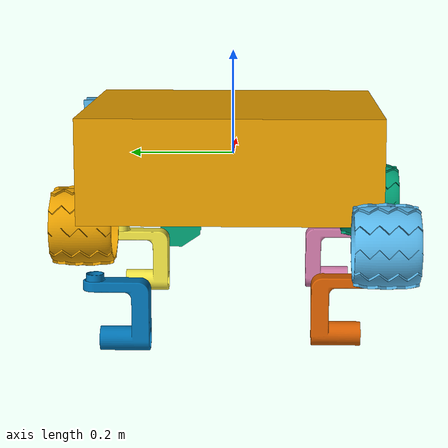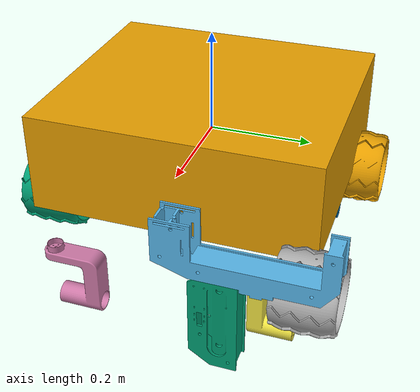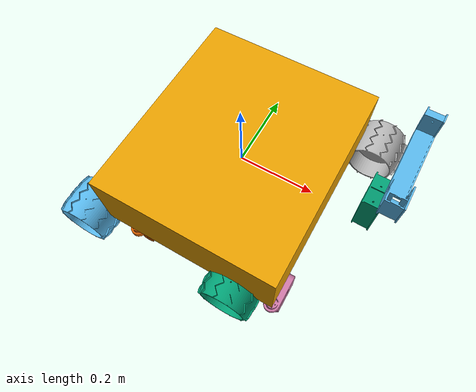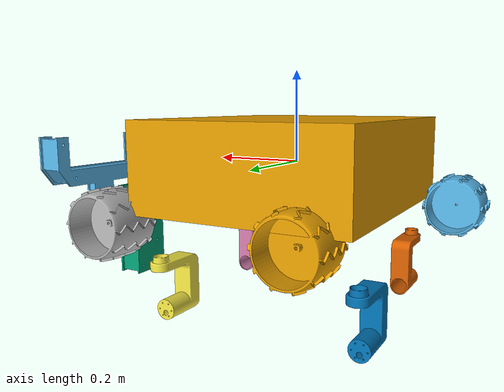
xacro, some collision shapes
<?xml version="1.0"?>
<robot xmlns:xacro="http://www.ros.org/wiki/xacro" name="mani">

	<!-- TODO: set to correct mass values
		   set to correct inertia values
		   joint speed chassis_to_steeringangles
		   adjust coordinate system in CAD files
		   add camera head -->

	<xacro:property name="PI" value="3.141592654"/>
	<xacro:property name="to_scale" value="0.001"/>

	<!-- Links -->

	<link name="chassis">
		<xacro:property name="ch_x" value="0.484"/>
		<xacro:property name="ch_y" value="0.55374428"/>
		<xacro:property name="ch_z" value="0.19384846"/>
		<xacro:property name="ch_mass" value="2.0"/>

		<visual name="visual">
<origin xyz="${ch_x/2} ${ch_y/2} ${-ch_z/2}" rpy="0 0 ${PI}"/>
			<geometry>
				<mesh filename="file://$(find mani)/mani_description/meshes/MANI-chassis.STL" scale="${to_scale} ${to_scale} ${to_scale}"/>
			</geometry>
		</visual>

		<!-- simplify as a box for quicker processing -->
		<collision name="collision">
			<origin xyz="0 0 0" rpy="0 0 0"/>
			<geometry>
				<box size="${ch_x} ${ch_y} ${ch_z}"/>
			</geometry>
		</collision>

		<inertial>
			<!-- origin = center of mass -->
			<mass value="${ch_mass}"/>
			<inertia ixx="1"
				 ixy="0"
				 ixz="0"
				 iyy="1"
				 iyz="0"
				 izz="1"/>
		</inertial>
	</link>

	<link name="camera_neck">
		<xacro:property name="camn_x" value="0.053"/>
		<xacro:property name="camn_y" value="0.305"/>
		<xacro:property name="camn_z" value="0.122"/>
		<xacro:property name="camn_mass" value="0.19076"/>

		<visual name="visual">
			<origin xyz="${ch_x/2-camn_x-0.016} ${ch_y/2-0.0675} ${-ch_z-0.025}" rpy="0 0 ${PI}"/>
			<geometry>
				<mesh filename="file://$(find mani)/mani_description/meshes/MANI-cameraneck.STL" scale="${to_scale} ${to_scale} ${to_scale}"/>
			</geometry>
		</visual>

		<collision name="collision">
			<origin xyz="0 0 0"/>
                        <geometry>
                                <box size="${camn_x} ${camn_y} ${camn_z}"/>
                        </geometry>
		</collision>

		<inertial>
			<origin xyz="0 0 0" rpy="${PI/2} 0 ${PI/2}"/>
			<mass value="${camn_mass}"/>
			<inertia ixx="0.01"
                                 ixy="0"
                                 ixz="0"
                                 iyy="0.01"
                                 iyz="0"
                                 izz="0.01"/>
		</inertial>
	</link>

	<link name="camera_head">
		<xacro:property name="camh_x" value="0.053"/>
		<xacro:property name="camh_y" value="0.203"/>
		<xacro:property name="camh_z" value="0.088"/>
		<xacro:property name="camh_mass" value="0.76741"/>

		<visual name="visual">
			<origin xyz="${ch_x/2-camh_x-camn_x-0.005+0.001} ${ch_y/2-camh_y/2+camh_y/4-camh_y/2+0.011} ${-ch_z-camh_z/2-0.018}" rpy="0 0 ${PI}"/>
			<geometry>
				<mesh filename="file://$(find mani)/mani_description/meshes/MANI-camerahead.STL" scale="${to_scale} ${to_scale} ${to_scale}"/>
			</geometry>
		</visual>

		<collision name="collision">
			<origin xyz="0 0 ${camh_z/3}" rpy="0 0 0"/>
			<geometry>
				<box size="${camh_x} ${camh_y} ${camh_z}"/>
			</geometry>
		</collision>

		<inertial>
			<origin xyz="0 0 0" rpy="${PI/2} 0 ${PI/2}"/>
			<mass value="${camh_mass}"/>
			<inertia ixx="0.01"
                                 ixy="0"
                                 ixz="0"
                                 iyy="0.01"
                                 iyz="0"
                                 izz="0.01"/>
		</inertial>
	</link>

	<!-- steering angles -->
	<xacro:property name="sa_x" value="0.044"/>
        <xacro:property name="sa_y" value="0.121"/>
        <xacro:property name="sa_z" value="0.130"/>
        <xacro:property name="sa_mass" value="0.818"/>
	<xacro:macro name="steering_angle" params="name *visual_origin *collision_origin *inertial_origin">
		<link name="steering_angle_${name}">
                	<visual name="visual">
                    		<xacro:insert_block name="visual_origin"/>
                        	<geometry>
                                	<mesh filename="file://$(find mani)/mani_description/meshes/MANI-steeringangle.STL" scale="${to_scale} ${to_scale} ${to_scale}"/>
                        	</geometry>
                	</visual>

                	<!-- not possible to simplify with a simple shape, so use original mesh -->
                	<collision name="collision">
                        	<xacro:insert_block name="collision_origin"/>
                        	<geometry>
                        		<box size="${sa_x} ${sa_y} ${sa_z}"/>
</geometry>
                	</collision>

                	<inertial>
				<xacro:insert_block name="inertial_origin"/>
				<mass value="${sa_mass}"/>
				<inertia ixx="0.01"
                                 	 ixy="0"
                                	 ixz="0"
                                 	 iyy="0.01"
                                 	 iyz="0"
                                 	 izz="0.01"/>
                	</inertial>
        	</link>
	</xacro:macro>

	<steering_angle name="frontleft">
		<origin xyz="${-0.03122+0.08868404/4-0.0175} ${0.026} ${-0.00117-0.142/2+0.025}" rpy="0 0 ${-PI/2}"/>
		<origin xyz="0 ${-sa_y/4} 0"/>
		<origin xyz="0 0 0" rpy="${PI/2} ${PI/2} ${PI/2}"/>
	</steering_angle>

	<steering_angle name="rearleft">
		<origin xyz="${-0.03122+0.08868404/4-0.013} ${0.026} ${-0.00117-0.142/2+0.025}" rpy="0 0 ${-PI/2}"/>
		<origin xyz="0 ${-sa_y/4} 0"/>
		<origin xyz="0 0 0" rpy="${PI/2} 0 ${PI/2}"/>
	</steering_angle>

	<steering_angle name="rearright">
		<origin xyz="${+0.03122-0.08868404/4+0.01} ${-0.031} ${-0.00117-0.142/2+0.025}" rpy="0 0 ${PI/2}"/>

                <origin xyz="0 ${sa_y/4} 0"/>
                <origin xyz="0 0 0" rpy="${PI/2} 0 ${PI/2}"/>
        </steering_angle>

	<steering_angle name="frontright">
                <origin xyz="${+0.03122-0.08868404/4+0.0025} ${-0.031} ${-0.00117-0.142/2+0.025}" rpy="0 0 ${PI/2}"/>
                <origin xyz="0 ${sa_y/4} 0"/>
                <origin xyz="0 0 0" rpy="${PI/2} 0 ${PI/2}"/>
        </steering_angle>

	<!-- wheels -->
	<xacro:property name="wh_length" value="0.115"/>
        <xacro:property name="wh_radius" value="${0.130/2}"/>
        <xacro:property name="wh_mass" value="0.57134"/>
	<xacro:macro name="wheel" params="name *visual_origin *collision_origin *inertial_origin">
		<link name="wheel_${name}">
                	<visual name="visual">
				<xacro:insert_block name="visual_origin"/>
                        	<geometry>
                                	<mesh filename="file://$(find mani)/mani_description/meshes/MANI-wheel.STL" scale="${to_scale} ${to_scale} ${to_scale}"/>
                        	</geometry>
                	</visual>

                	<collision name="collision">
                        	<xacro:insert_block name="collision_origin"/>
                       		<geometry>
                                	<cylinder length="${wh_length}" radius="${wh_radius}"/>
                        	</geometry>
                	</collision>

                	<inertial>
				<xacro:insert_block name="inertial_origin"/>
                        	<mass value="${wh_mass}"/>
                        	<inertia ixx="0.01"
                                 	 ixy="0"
                                	 ixz="0"
                                	 iyy="0.01"
                                	 iyz="0"
                                	 izz="0.01"/>
                	</inertial>
        	</link>
	</xacro:macro>

	<wheel name="frontleft">
		<origin xyz="${wh_radius+0.0125} ${-wh_radius-0.0122+0.0015} ${wh_length/2}" rpy="0 ${PI} 0"/> <!-- visual-->
		<origin xyz="0 0 0"/>	<!-- collision -->
		<origin xyz="0 0 0"/>	<!-- inertial -->
	</wheel>

	<wheel name="rearleft">
	   	<origin xyz="${wh_radius+0.0125} ${-wh_radius-0.0122+0.0015} ${wh_length/2}" rpy="0 ${PI} 0"/>
                <origin xyz="0 0 0"/>
		<origin xyz="0 0 0"/>
        </wheel>

	<wheel name="rearright">
                <origin xyz="${-wh_radius-0.0125} ${-wh_radius-0.0122+0.0015} ${-wh_length/2}"/>
                <origin xyz="0 0 0"/>
		<origin xyz="0 0 0"/>
        </wheel>

	<wheel name="frontright">
                <origin xyz="${-wh_radius-0.0125} ${-wh_radius-0.0122+0.0015} ${-wh_length/2}"/>
		<origin xyz="0 0 0"/>
                <origin xyz="0 0 0"/>
        </wheel>

	<!-- Joints -->

	<!-- camera head 60-60 grad-->
	<joint name="cam_1_neck" type="revolute"> <!-- revolute -->
		<parent link="chassis"/>
		<child link="camera_neck"/>
		<limit effort="100.0" lower="-1.0472" upper="1.0472" velocity="10"/>
		<axis xyz="0 0 1"/>
		<origin xyz="${ch_x/2-camn_x/2} 0 ${ch_z/2+camn_z/2}" rpy="0 0 0"/>
	</joint>

	<joint name="cam_2_head" type="revolute">
		<parent link="camera_neck"/>
		<child link="camera_head"/>
		<limit effort="100.0" lower="-${PI/2}" upper="${PI/2}" velocity="10"/>
		<axis xyz="0 1 0"/>
		<origin xyz="0 0 ${camn_z*0.3}" rpy="0 0 0"/>
	</joint>

	<!-- steering angles -->
	<!-- f: front, b: back, l: left, r: right-->
	<xacro:property name="steering_max_vel" value="0.75"/>
	<xacro:macro name="steer" params="joint_name pos *origin">
		<joint name="${joint_name}" type="revolute">
			<parent link="chassis"/>
                	<child link="steering_angle_${pos}"/>
                	<limit effort="100.0" lower="-${PI/2}" upper="${PI/2}" velocity="${steering_max_vel}"/>
                	<axis xyz="0 0 1"/>
               		<xacro:insert_block name="origin"/>
		</joint>
	</xacro:macro>

	<steer joint_name="steer_1_fl" pos="frontleft">
                <origin xyz="${ch_x/2-sa_x/2} ${ch_y/2-sa_y/2} ${-ch_z/2-sa_z/2}"/>
        </steer>

	<steer joint_name="steer_2_rl" pos="rearleft">
                <origin xyz="${-ch_x/2+sa_x/2} ${ch_y/2-sa_y/2} ${-ch_z/2-sa_z/2}"/>
        </steer>

	<steer joint_name="steer_3_rr" pos="rearright">
                <origin xyz="${-ch_x/2+sa_x/2} ${-ch_y/2+sa_y/2} ${-ch_z/2-sa_z/2}"/>
        </steer>

	<steer joint_name="steer_4_fr" pos="frontright">
		<origin xyz="${ch_x/2-sa_x/2} ${-ch_y/2+sa_y/2} ${-ch_z/2-sa_z/2}"/>
	</steer>

	<!-- wheels -->
	<xacro:macro name="drive" params="joint_name pos *origin">
		<joint name="${joint_name}" type="continuous">
			<parent link="steering_angle_${pos}"/>
			<child link="wheel_${pos}"/>
			<axis xyz="0 0 1"/>
			<xacro:insert_block name="origin"/>
		</joint>
	</xacro:macro>

	<!-- 0.22 is an offset value based on the current design (inner radius) -->
	<drive joint_name="drive_1_fl" pos="frontleft">
		<origin xyz="${-0.005} ${0} ${-sa_z/2+0.022+0.0065+0.0122/2}" rpy="${-PI/2} 0 0"/>
	</drive>

	<drive joint_name="drive_2_rl" pos="rearleft">
                <origin xyz="${0} ${0} ${-sa_z/2+0.022+0.0065+0.0122/2}" rpy="${-PI/2} 0 0"/>
        </drive>

	<drive joint_name="drive_3_rr" pos="rearright">
                <origin xyz="${-0.005} ${0} ${-sa_z/2+0.022+0.0065+0.0112/2}" rpy="${-PI/2} 0 0"/>
        </drive>

	<drive joint_name="drive_4_fr" pos="frontright">
                <origin xyz="${-0.01} ${0} ${-sa_z/2+0.022+0.0065+0.0112/2}" rpy="${-PI/2} 0 0"/>
        </drive>

	<!-- transmission -->
        <!-- move camera neck/head -->
	<transmission name="transm_cam_neck">
		<type>transmission_interface/SimpleTransmission</type>
		<joint name="cam_1_neck">
			<hardwareInterface>hardware_interface/EffortJointInterface</hardwareInterface>
		</joint>
		<actuator name="motor_cam_neck">
			<hardwareInterface>EffortJointInterface</hardwareInterface>
			<mechanicalReduction>1</mechanicalReduction>
		</actuator>
	</transmission>

	<transmission name="transm_cam_head">
		<type>transmission_interface/SimpleTransmission</type>
		<joint name="cam_2_head">
			<hardwareInterface>hardware_interface/EffortJointInterface</hardwareInterface>
		</joint>
		<actuator name="motor_cam_head">
			<hardwareInterface>EffortJointInterface</hardwareInterface>
			<mechanicalReduction>1</mechanicalReduction>
		</actuator>
	</transmission>

	<!-- move steering angles -->
	<transmission name="transm_steer_fl">
		<type>transmission_interface/SimpleTransmission</type>
		<joint name="steer_1_fl">
			<hardwareInterface>hardware_interface/EffortJointInterface</hardwareInterface>
		</joint>
		<actuator name="motor_steer_fl">
			<hardwareInterface>EffortJointInterface</hardwareInterface>
                        <mechanicalReduction>1</mechanicalReduction>
		</actuator>
	</transmission>

	<transmission name="transm_steer_rl">
                <type>transmission_interface/SimpleTransmission</type>
                <joint name="steer_2_rl">
                        <hardwareInterface>hardware_interface/EffortJointInterface</hardwareInterface>
                </joint>
                <actuator name="motor_steer_rl">
                        <hardwareInterface>EffortJointInterface</hardwareInterface>
                        <mechanicalReduction>1</mechanicalReduction>
                </actuator>
        </transmission>

	<transmission name="transm_steer_rr">
                <type>transmission_interface/SimpleTransmission</type>
                <joint name="steer_3_rr">
                        <hardwareInterface>hardware_interface/EffortJointInterface</hardwareInterface>
                </joint>
                <actuator name="motor_steer_rr">
                        <hardwareInterface>EffortJointInterface</hardwareInterface>
                        <mechanicalReduction>1</mechanicalReduction>
                </actuator>
        </transmission>

	<transmission name="transm_steer_fr">
                <type>transmission_interface/SimpleTransmission</type>
                <joint name="steer_4_fr">
                        <hardwareInterface>hardware_interface/EffortJointInterface</hardwareInterface>
                </joint>
                <actuator name="motor_steer_fr">
                        <hardwareInterface>EffortJointInterface</hardwareInterface>
                        <mechanicalReduction>1</mechanicalReduction>
                </actuator>
        </transmission>

	<!-- move wheels -->
	<transmission name="transm_wheel_fl">
		<type>transmission_interface/SimpleTransmission</type>
		<joint name="drive_1_fl">
			<hardwareInterface>hardware_interface/VelocityJointInterface</hardwareInterface>
		</joint>
		<actuator name="motor_wheel_fl">
			<hardwareInterface>VelocityJointInterface</hardwareInterface>
			<mechanicalReduction>1</mechanicalReduction>
		</actuator>
	</transmission>

	<transmission name="transm_wheel_rl">
		<type>transmission_interface/SimpleTransmission</type>
		<joint name="drive_2_rl">
			<hardwareInterface>hardware_interface/VelocityJointInterface</hardwareInterface>
		</joint>
		<actuator name="motor_wheel_rl">
			<hardwareInterface>VelocityJointInterface</hardwareInterface>
			<mechanicalReduction>1</mechanicalReduction>
		</actuator>
	</transmission>

	<transmission name="transm_wheel_rr">
                <type>transmission_interface/SimpleTransmission</type>
                <joint name="drive_3_rr">
                        <hardwareInterface>hardware_interface/VelocityJointInterface</hardwareInterface>
                </joint>
                <actuator name="motor_wheel_rr">
                        <hardwareInterface>VelocityJointInterface</hardwareInterface>
                        <mechanicalReduction>1</mechanicalReduction>
                </actuator>
        </transmission>

        <transmission name="transm_wheel_fr">
                <type>transmission_interface/SimpleTransmission</type>
                <joint name="drive_4_fr">
                        <hardwareInterface>hardware_interface/VelocityJointInterface</hardwareInterface>
                </joint>
                <actuator name="motor_wheel_fr">
                        <hardwareInterface>VelocityJointInterface</hardwareInterface>
                        <mechanicalReduction>1</mechanicalReduction>
                </actuator>
        </transmission>

	<!-- plugins -->
        <gazebo>
                <plugin name="gazebo_ros_control" filename="libgazebo_ros_control.so">
		<robotNamespace>/mani</robotNamespace>
		<robotSimType>gazebo_ros_control/DefaultRobotHWSim</robotSimType>
		<legacyModeNS>true</legacyModeNS>
                </plugin>
        </gazebo>

	<gazebo>
		<static>false</static>
	</gazebo>
</robot>
